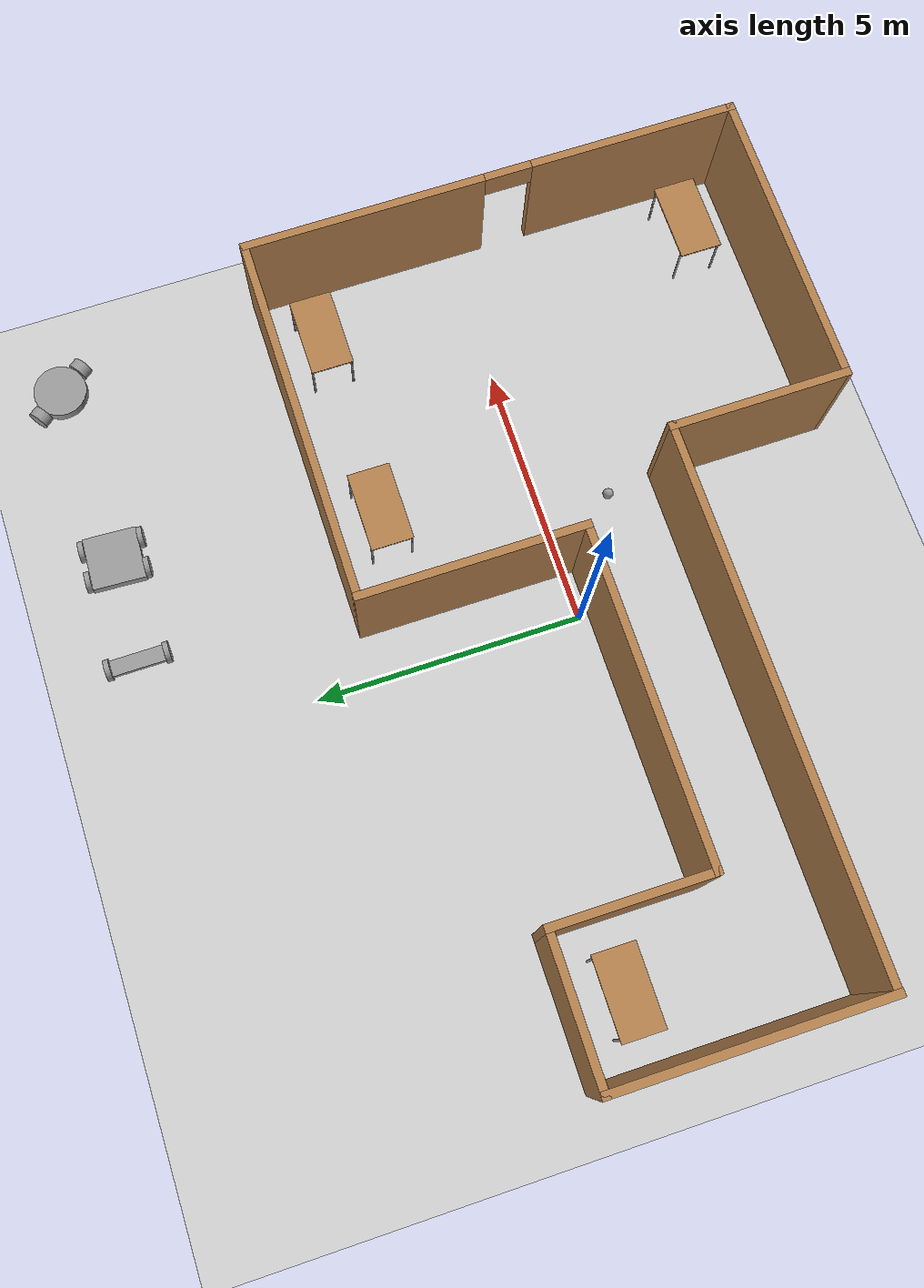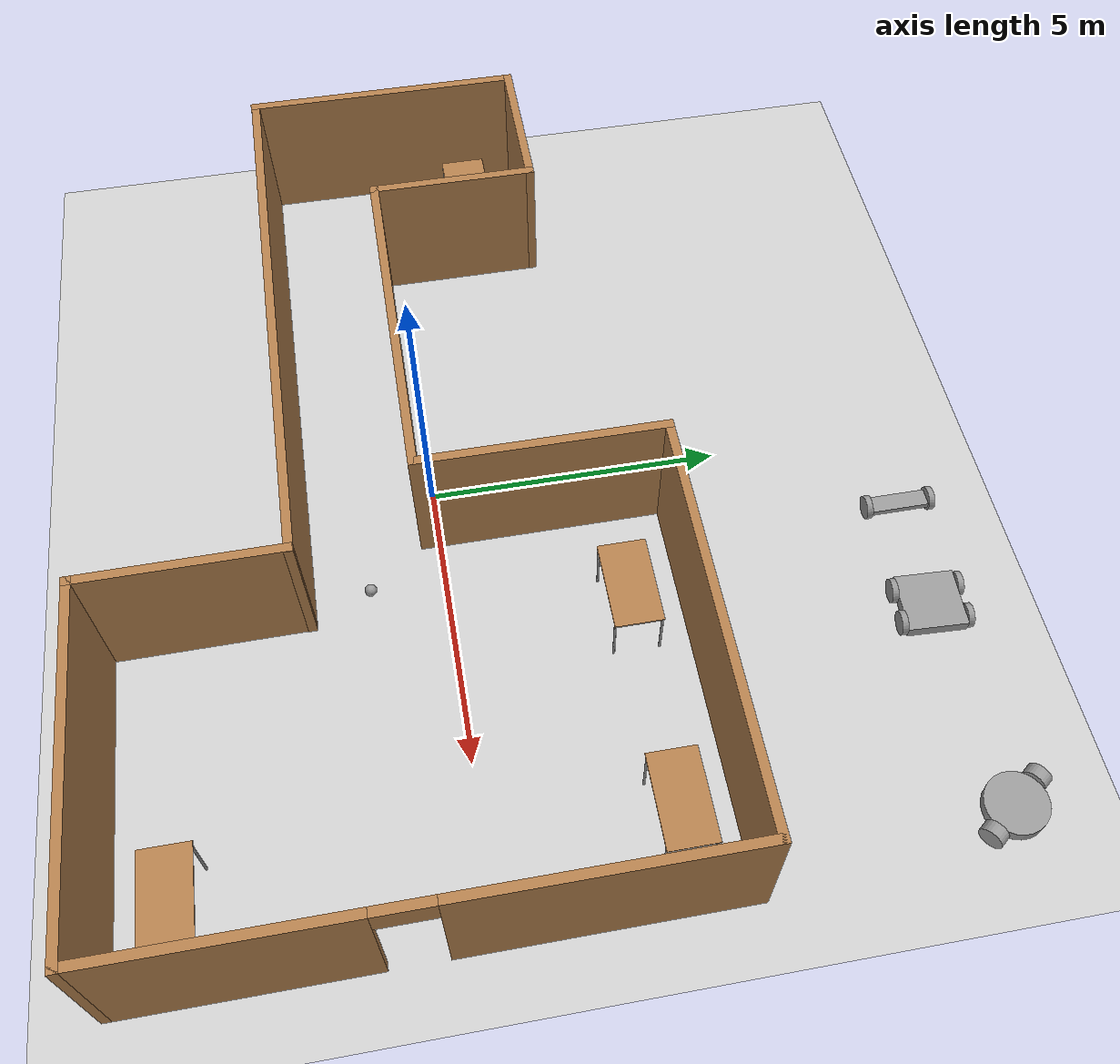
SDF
<sdf version="1.6">
 <world name="default">
  <light name="sun" type="directional">
   <pose>0 0 10 0 -0 0</pose>
   <diffuse>0.8 0.8 0.8 1</diffuse>
   <specular>0.2 0.2 0.2 1</specular>
   <attenuation>
    <range>1000</range>
    <constant>0.9</constant>
    <linear>0.01</linear>
    <quadratic>0.001</quadratic>
   </attenuation>
   <direction>-0.5 0.1 -0.9</direction>
   <spot><inner_angle>0</inner_angle><outer_angle>0</outer_angle><falloff>0</falloff></spot>
  </light>
  <model name="ground_plane">
   <static>1</static>
   <link name="link">
    <collision name="collision">
     <geometry><plane><normal>0 0 1</normal><size>100 100</size></plane></geometry>
     <surface>
      <contact><collide_bitmask>65535</collide_bitmask></contact>
      <friction><ode><mu>100</mu><mu2>50</mu2></ode></friction>
     </surface>
    </collision>
    <visual name="visual">
     <cast_shadows>0</cast_shadows>
     <geometry><plane><normal>0 0 1</normal><size>100 100</size></plane></geometry>
     <material>
      <script><uri>file://media/materials/scripts/gazebo.material</uri><name>Gazebo/Grey</name></script>
     </material>
    </visual>
   </link>
  </model>
  <gravity>0 0 -9.8</gravity>
  <magnetic_field>6e-06 2.3e-05 -4.2e-05</magnetic_field>
  <atmosphere type="adiabatic"/>
  <physics name="default_physics" default="0" type="ode">
   <max_step_size>0.001</max_step_size>
   <real_time_factor>1</real_time_factor>
   <real_time_update_rate>1000</real_time_update_rate>
  </physics>
  <scene><ambient>0.4 0.4 0.4 1</ambient><background>0.7 0.7 0.7 1</background><shadows>1</shadows></scene>
  <spherical_coordinates>
   <surface_model>EARTH_WGS84</surface_model>
   <latitude_deg>0</latitude_deg>
   <longitude_deg>0</longitude_deg>
   <elevation>0</elevation>
   <heading_deg>0</heading_deg>
  </spherical_coordinates>
  <model name="robot">
   <link name="link_1">
    <inertial>
     <mass>1</mass>
     <inertia>
      <ixx>0.166667</ixx>
      <ixy>0</ixy>
      <ixz>0</ixz>
      <iyy>0.166667</iyy>
      <iyz>0</iyz>
      <izz>0.166667</izz>
     </inertia>
    </inertial>
    <visual name="visual">
     <geometry><box><size>0.3 1 0.1</size></box></geometry>
     <material>
      <lighting>1</lighting>
      <script><uri>file://media/materials/scripts/gazebo.material</uri><name>Gazebo/Grey</name></script>
      <shader type="pixel"><normal_map>__default__</normal_map></shader>
      <ambient>0.3 0.3 0.3 1</ambient>
      <diffuse>0.7 0.7 0.7 1</diffuse>
      <specular>0.01 0.01 0.01 1</specular>
      <emissive>0 0 0 1</emissive>
     </material>
    </visual>
    <collision name="collision">
     <geometry><box><size>0.3 1 0.1</size></box></geometry>
     <surface>
      <friction>
       <ode><mu>1</mu><mu2>1</mu2><fdir1>0 0 0</fdir1><slip1>0</slip1><slip2>0</slip2></ode>
       <torsional>
        <coefficient>1</coefficient>
        <patch_radius>0</patch_radius>
        <surface_radius>0</surface_radius>
        <use_patch_radius>1</use_patch_radius>
        <ode><slip>0</slip></ode>
       </torsional>
      </friction>
      <bounce><restitution_coefficient>0</restitution_coefficient><threshold>1e+06</threshold></bounce>
      <contact>
       <collide_without_contact>0</collide_without_contact>
       <collide_without_contact_bitmask>1</collide_without_contact_bitmask>
       <collide_bitmask>1</collide_bitmask>
       <ode>
        <soft_cfm>0</soft_cfm>
        <soft_erp>0.2</soft_erp>
        <kp>1e+13</kp>
        <kd>1</kd>
        <max_vel>0.01</max_vel>
        <min_depth>0</min_depth>
       </ode>
       <bullet>
        <split_impulse>1</split_impulse>
        <split_impulse_penetration_threshold>-0.01</split_impulse_penetration_threshold>
        <soft_cfm>0</soft_cfm>
        <soft_erp>0.2</soft_erp>
        <kp>1e+13</kp>
        <kd>1</kd>
       </bullet>
      </contact>
     </surface>
    </collision>
   </link>
   <link name="link_2">
    <inertial>
     <mass>1</mass>
     <inertia><ixx>0.145833</ixx><ixy>0</ixy><ixz>0</ixz><iyy>0.145833</iyy><iyz>0</iyz><izz>0.125</izz></inertia>
    </inertial>
    <pose>0 -0.550019 0 1.5707 -0 0</pose>
    <visual name="visual">
     <geometry><cylinder><radius>0.2</radius><length>0.1</length></cylinder></geometry>
     <material>
      <lighting>1</lighting>
      <script><uri>file://media/materials/scripts/gazebo.material</uri><name>Gazebo/Grey</name></script>
      <shader type="pixel"><normal_map>__default__</normal_map></shader>
      <ambient>0.3 0.3 0.3 1</ambient>
      <diffuse>0.7 0.7 0.7 1</diffuse>
      <specular>0.01 0.01 0.01 1</specular>
      <emissive>0 0 0 1</emissive>
     </material>
    </visual>
    <collision name="collision">
     <geometry><cylinder><radius>0.2</radius><length>0.1</length></cylinder></geometry>
     <surface>
      <friction>
       <ode><mu>1</mu><mu2>1</mu2><fdir1>0 0 0</fdir1><slip1>0</slip1><slip2>0</slip2></ode>
       <torsional>
        <coefficient>1</coefficient>
        <patch_radius>0</patch_radius>
        <surface_radius>0</surface_radius>
        <use_patch_radius>1</use_patch_radius>
        <ode><slip>0</slip></ode>
       </torsional>
      </friction>
      <bounce><restitution_coefficient>0</restitution_coefficient><threshold>1e+06</threshold></bounce>
      <contact>
       <collide_without_contact>0</collide_without_contact>
       <collide_without_contact_bitmask>1</collide_without_contact_bitmask>
       <collide_bitmask>1</collide_bitmask>
       <ode>
        <soft_cfm>0</soft_cfm>
        <soft_erp>0.2</soft_erp>
        <kp>1e+13</kp>
        <kd>1</kd>
        <max_vel>0.01</max_vel>
        <min_depth>0</min_depth>
       </ode>
       <bullet>
        <split_impulse>1</split_impulse>
        <split_impulse_penetration_threshold>-0.01</split_impulse_penetration_threshold>
        <soft_cfm>0</soft_cfm>
        <soft_erp>0.2</soft_erp>
        <kp>1e+13</kp>
        <kd>1</kd>
       </bullet>
      </contact>
     </surface>
    </collision>
   </link>
   <link name="link_2_clone">
    <inertial>
     <mass>1</mass>
     <inertia><ixx>0.145833</ixx><ixy>0</ixy><ixz>0</ixz><iyy>0.145833</iyy><iyz>0</iyz><izz>0.125</izz></inertia>
    </inertial>
    <pose>0 0.550019 0 1.5707 -0 0</pose>
    <visual name="visual">
     <geometry><cylinder><radius>0.2</radius><length>0.1</length></cylinder></geometry>
     <material>
      <lighting>1</lighting>
      <script><uri>file://media/materials/scripts/gazebo.material</uri><name>Gazebo/Grey</name></script>
      <shader type="pixel"><normal_map>__default__</normal_map></shader>
      <ambient>0.3 0.3 0.3 1</ambient>
      <diffuse>0.7 0.7 0.7 1</diffuse>
      <specular>0.01 0.01 0.01 1</specular>
      <emissive>0 0 0 1</emissive>
     </material>
    </visual>
    <collision name="collision">
     <geometry><cylinder><radius>0.2</radius><length>0.1</length></cylinder></geometry>
     <surface>
      <friction>
       <ode><mu>1</mu><mu2>1</mu2><fdir1>0 0 0</fdir1><slip1>0</slip1><slip2>0</slip2></ode>
       <torsional>
        <coefficient>1</coefficient>
        <patch_radius>0</patch_radius>
        <surface_radius>0</surface_radius>
        <use_patch_radius>1</use_patch_radius>
        <ode><slip>0</slip></ode>
       </torsional>
      </friction>
      <bounce><restitution_coefficient>0</restitution_coefficient><threshold>1e+06</threshold></bounce>
      <contact>
       <collide_without_contact>0</collide_without_contact>
       <collide_without_contact_bitmask>1</collide_without_contact_bitmask>
       <collide_bitmask>1</collide_bitmask>
       <ode>
        <soft_cfm>0</soft_cfm>
        <soft_erp>0.2</soft_erp>
        <kp>1e+13</kp>
        <kd>1</kd>
        <max_vel>0.01</max_vel>
        <min_depth>0</min_depth>
       </ode>
       <bullet>
        <split_impulse>1</split_impulse>
        <split_impulse_penetration_threshold>-0.01</split_impulse_penetration_threshold>
        <soft_cfm>0</soft_cfm>
        <soft_erp>0.2</soft_erp>
        <kp>1e+13</kp>
        <kd>1</kd>
       </bullet>
      </contact>
     </surface>
    </collision>
   </link>
   <joint name="link_1_JOINT_0" type="revolute">
    <parent>link_1</parent>
    <child>link_2</child>
    <axis>
     <xyz>0 0 1</xyz>
     <limit>
      <lower>-1.79769e+308</lower>
      <upper>1.79769e+308</upper>
      <effort>-1</effort>
      <velocity>-1</velocity>
     </limit>
     <dynamics>
      <spring_reference>0</spring_reference>
      <spring_stiffness>0</spring_stiffness>
      <damping>0</damping>
     </dynamics>
     <use_parent_model_frame>0</use_parent_model_frame>
    </axis>
    <physics>
     <ode><limit><cfm>0</cfm><erp>0.2</erp></limit><suspension><cfm>0</cfm><erp>0.2</erp></suspension></ode>
    </physics>
   </joint>
   <joint name="link_1_JOINT_1" type="revolute">
    <parent>link_1</parent>
    <child>link_2_clone</child>
    <axis>
     <xyz>0 0 1</xyz>
     <limit>
      <lower>-1.79769e+308</lower>
      <upper>1.79769e+308</upper>
      <effort>-1</effort>
      <velocity>-1</velocity>
     </limit>
     <dynamics>
      <spring_reference>0</spring_reference>
      <spring_stiffness>0</spring_stiffness>
      <damping>0</damping>
     </dynamics>
     <use_parent_model_frame>0</use_parent_model_frame>
    </axis>
    <physics>
     <ode><limit><cfm>0</cfm><erp>0.2</erp></limit><suspension><cfm>0</cfm><erp>0.2</erp></suspension></ode>
    </physics>
   </joint>
   <static>0</static>
   <pose>1.65673 7.87249 0.200005 0 -0 0</pose>
  </model>
  <model name="building">
   <pose>0.01839 -0.458464 0 0 -0 0</pose>
   <link name="Wall_0">
    <collision name="Wall_0_Collision">
     <geometry><box><size>5 0.15 2.5</size></box></geometry>
     <pose>0 0 1.25 0 -0 0</pose>
    </collision>
    <visual name="Wall_0_Visual">
     <pose>0 0 1.25 0 -0 0</pose>
     <geometry><box><size>5 0.15 2.5</size></box></geometry>
     <material>
      <script><uri>file://media/materials/scripts/gazebo.material</uri><name>Gazebo/Wood</name></script>
      <ambient>1 1 1 1</ambient>
     </material>
     <meta><layer>0</layer></meta>
    </visual>
    <pose>-7.78488 0.627645 0 0 -0 1.5708</pose>
   </link>
   <link name="Wall_1">
    <collision name="Wall_1_Collision">
     <geometry><box><size>2.77048 0.15 2.5</size></box></geometry>
     <pose>0 0 1.25 0 -0 0</pose>
    </collision>
    <visual name="Wall_1_Visual">
     <pose>0 0 1.25 0 -0 0</pose>
     <geometry><box><size>2.77048 0.15 2.5</size></box></geometry>
     <material>
      <script><uri>file://media/materials/scripts/gazebo.material</uri><name>Gazebo/Wood</name></script>
      <ambient>1 1 1 1</ambient>
     </material>
     <meta><layer>0</layer></meta>
    </visual>
    <pose>-6.47488 3.06265 0 0 -0 0</pose>
   </link>
   <link name="Wall_2">
    <collision name="Wall_2_Collision">
     <geometry><box><size>3 0.15 2.5</size></box></geometry>
     <pose>0 0 1.25 0 -0 0</pose>
    </collision>
    <visual name="Wall_2_Visual">
     <pose>0 0 1.25 0 -0 0</pose>
     <geometry><box><size>3 0.15 2.5</size></box></geometry>
     <material>
      <script><uri>file://media/materials/scripts/gazebo.material</uri><name>Gazebo/Wood</name></script>
      <ambient>1 1 1 1</ambient>
     </material>
     <meta><layer>0</layer></meta>
    </visual>
    <pose>-5.16488 1.63765 0 0 -0 -1.5708</pose>
   </link>
   <link name="Wall_3">
    <collision name="Wall_3_Collision">
     <geometry><box><size>6.25 0.15 2.5</size></box></geometry>
     <pose>0 0 1.25 0 -0 0</pose>
    </collision>
    <visual name="Wall_3_Visual">
     <pose>0 0 1.25 0 -0 0</pose>
     <geometry><box><size>6.25 0.15 2.5</size></box></geometry>
     <material>
      <script><uri>file://media/materials/scripts/gazebo.material</uri><name>Gazebo/Wood</name></script>
      <ambient>1 1 1 1</ambient>
     </material>
     <meta><layer>0</layer></meta>
    </visual>
    <pose>-2.11488 0.212646 0 0 -0 0</pose>
   </link>
   <link name="Wall_4">
    <collision name="Wall_4_Collision">
     <geometry><box><size>4.25 0.15 2.5</size></box></geometry>
     <pose>0 0 1.25 0 -0 0</pose>
    </collision>
    <visual name="Wall_4_Visual">
     <pose>0 0 1.25 0 -0 0</pose>
     <geometry><box><size>4.25 0.15 2.5</size></box></geometry>
     <material>
      <script><uri>file://media/materials/scripts/gazebo.material</uri><name>Gazebo/Wood</name></script>
      <ambient>1 1 1 1</ambient>
     </material>
     <meta><layer>0</layer></meta>
    </visual>
    <pose>0.935119 2.26265 0 0 -0 1.5708</pose>
   </link>
   <link name="Wall_5">
    <collision name="Wall_5_Collision">
     <geometry><box><size>7 0.15 2.5</size></box></geometry>
     <pose>0 0 1.25 0 -0 0</pose>
    </collision>
    <visual name="Wall_5_Visual">
     <pose>0 0 1.25 0 -0 0</pose>
     <geometry><box><size>7 0.15 2.5</size></box></geometry>
     <material>
      <script><uri>file://media/materials/scripts/gazebo.material</uri><name>Gazebo/Wood</name></script>
      <ambient>1 1 1 1</ambient>
     </material>
     <meta><layer>0</layer></meta>
    </visual>
    <pose>4.36012 4.31265 0 0 -0 0</pose>
   </link>
   <link name="Wall_6">
    <pose>7.78512 -0.362354 0 0 -0 -1.5708</pose>
    <visual name="Wall_6_Visual_0">
     <pose>-2.4375 0 1.25 0 -0 0</pose>
     <geometry><box><size>4.625 0.15 2.5</size></box></geometry>
     <material>
      <script><uri>file://media/materials/scripts/gazebo.material</uri><name>Gazebo/Wood</name></script>
      <ambient>0.760784 0.662745 0.627451 1</ambient>
     </material>
     <meta><layer>0</layer></meta>
    </visual>
    <collision name="Wall_6_Collision_0">
     <geometry><box><size>4.625 0.15 2.5</size></box></geometry>
     <pose>-2.4375 0 1.25 0 -0 0</pose>
    </collision>
    <visual name="Wall_6_Visual_1">
     <pose>2.7625 0 1.25 0 -0 0</pose>
     <geometry><box><size>3.975 0.15 2.5</size></box></geometry>
     <material>
      <script><uri>file://media/materials/scripts/gazebo.material</uri><name>Gazebo/Wood</name></script>
      <ambient>0.760784 0.662745 0.627451 1</ambient>
     </material>
     <meta><layer>0</layer></meta>
    </visual>
    <collision name="Wall_6_Collision_1">
     <geometry><box><size>3.975 0.15 2.5</size></box></geometry>
     <pose>2.7625 0 1.25 0 -0 0</pose>
    </collision>
    <visual name="Wall_6_Visual_2">
     <pose>0.325 0 2.25 0 -0 0</pose>
     <geometry><box><size>0.9 0.15 0.5</size></box></geometry>
     <material>
      <script><uri>file://media/materials/scripts/gazebo.material</uri><name>Gazebo/Wood</name></script>
      <ambient>0.760784 0.662745 0.627451 1</ambient>
     </material>
     <meta><layer>0</layer></meta>
    </visual>
    <collision name="Wall_6_Collision_2">
     <geometry><box><size>0.9 0.15 0.5</size></box></geometry>
     <pose>0.325 0 2.25 0 -0 0</pose>
    </collision>
   </link>
   <link name="Wall_7">
    <collision name="Wall_7_Collision">
     <geometry><box><size>5.75 0.15 2.5</size></box></geometry>
     <pose>0 0 1.25 0 -0 0</pose>
    </collision>
    <visual name="Wall_7_Visual">
     <pose>0 0 1.25 0 -0 0</pose>
     <geometry><box><size>5.75 0.15 2.5</size></box></geometry>
     <material>
      <script><uri>file://media/materials/scripts/gazebo.material</uri><name>Gazebo/Wood</name></script>
      <ambient>1 1 1 1</ambient>
     </material>
     <meta><layer>0</layer></meta>
    </visual>
    <pose>4.98512 -5.03735 0 0 -0 3.14159</pose>
   </link>
   <link name="Wall_8">
    <collision name="Wall_8_Collision">
     <geometry><box><size>3.40014 0.15 2.5</size></box></geometry>
     <pose>0 0 1.25 0 -0 0</pose>
    </collision>
    <visual name="Wall_8_Visual">
     <pose>0 0 1.25 0 -0 0</pose>
     <geometry><box><size>3.40014 0.15 2.5</size></box></geometry>
     <material>
      <script><uri>file://media/materials/scripts/gazebo.material</uri><name>Gazebo/Wood</name></script>
      <ambient>1 1 1 1</ambient>
     </material>
     <meta><layer>0</layer></meta>
    </visual>
    <pose>2.18012 -3.41235 0 0 -0 1.57387</pose>
   </link>
   <link name="Wall_9">
    <collision name="Wall_9_Collision">
     <geometry><box><size>10 0.15 2.5</size></box></geometry>
     <pose>0 0 1.25 0 -0 0</pose>
    </collision>
    <visual name="Wall_9_Visual">
     <pose>0 0 1.25 0 -0 0</pose>
     <geometry><box><size>10 0.15 2.5</size></box></geometry>
     <material>
      <script><uri>file://media/materials/scripts/gazebo.material</uri><name>Gazebo/Wood</name></script>
      <ambient>1 1 1 1</ambient>
     </material>
     <meta><layer>0</layer></meta>
    </visual>
    <pose>-2.73988 -1.78735 0 0 -0 3.14159</pose>
   </link>
   <static>1</static>
  </model>
  <model name="table">
   <static>1</static>
   <link name="link">
    <collision name="surface">
     <pose>0 0 1 0 -0 0</pose>
     <geometry><box><size>1.5 0.8 0.03</size></box></geometry>
     <surface><friction><ode><mu>0.6</mu><mu2>0.6</mu2></ode></friction></surface>
    </collision>
    <visual name="visual1">
     <pose>0 0 1 0 -0 0</pose>
     <geometry><box><size>1.5 0.8 0.03</size></box></geometry>
     <material>
      <script><uri>file://media/materials/scripts/gazebo.material</uri><name>Gazebo/Wood</name></script>
     </material>
    </visual>
    <collision name="front_left_leg">
     <pose>0.68 0.38 0.5 0 -0 0</pose>
     <geometry><cylinder><radius>0.02</radius><length>1</length></cylinder></geometry>
    </collision>
    <visual name="front_left_leg">
     <pose>0.68 0.38 0.5 0 -0 0</pose>
     <geometry><cylinder><radius>0.02</radius><length>1</length></cylinder></geometry>
     <material>
      <script><uri>file://media/materials/scripts/gazebo.material</uri><name>Gazebo/Grey</name></script>
     </material>
    </visual>
    <collision name="front_right_leg">
     <pose>0.68 -0.38 0.5 0 -0 0</pose>
     <geometry><cylinder><radius>0.02</radius><length>1</length></cylinder></geometry>
    </collision>
    <visual name="front_right_leg">
     <pose>0.68 -0.38 0.5 0 -0 0</pose>
     <geometry><cylinder><radius>0.02</radius><length>1</length></cylinder></geometry>
     <material>
      <script><uri>file://media/materials/scripts/gazebo.material</uri><name>Gazebo/Grey</name></script>
     </material>
    </visual>
    <collision name="back_right_leg">
     <pose>-0.68 -0.38 0.5 0 -0 0</pose>
     <geometry><cylinder><radius>0.02</radius><length>1</length></cylinder></geometry>
    </collision>
    <visual name="back_right_leg">
     <pose>-0.68 -0.38 0.5 0 -0 0</pose>
     <geometry><cylinder><radius>0.02</radius><length>1</length></cylinder></geometry>
     <material>
      <script><uri>file://media/materials/scripts/gazebo.material</uri><name>Gazebo/Grey</name></script>
     </material>
    </visual>
    <collision name="back_left_leg">
     <pose>-0.68 0.38 0.5 0 -0 0</pose>
     <geometry><cylinder><radius>0.02</radius><length>1</length></cylinder></geometry>
    </collision>
    <visual name="back_left_leg">
     <pose>-0.68 0.38 0.5 0 -0 0</pose>
     <geometry><cylinder><radius>0.02</radius><length>1</length></cylinder></geometry>
     <material>
      <script><uri>file://media/materials/scripts/gazebo.material</uri><name>Gazebo/Grey</name></script>
     </material>
    </visual>
   </link>
   <pose>6.47443 2.90944 0 0 -0 0</pose>
  </model>
  <model name="table_0">
   <static>1</static>
   <link name="link">
    <collision name="surface">
     <pose>0 0 1 0 -0 0</pose>
     <geometry><box><size>1.5 0.8 0.03</size></box></geometry>
     <surface><friction><ode><mu>0.6</mu><mu2>0.6</mu2></ode></friction></surface>
    </collision>
    <visual name="visual1">
     <pose>0 0 1 0 -0 0</pose>
     <geometry><box><size>1.5 0.8 0.03</size></box></geometry>
     <material>
      <script><uri>file://media/materials/scripts/gazebo.material</uri><name>Gazebo/Wood</name></script>
     </material>
    </visual>
    <collision name="front_left_leg">
     <pose>0.68 0.38 0.5 0 -0 0</pose>
     <geometry><cylinder><radius>0.02</radius><length>1</length></cylinder></geometry>
    </collision>
    <visual name="front_left_leg">
     <pose>0.68 0.38 0.5 0 -0 0</pose>
     <geometry><cylinder><radius>0.02</radius><length>1</length></cylinder></geometry>
     <material>
      <script><uri>file://media/materials/scripts/gazebo.material</uri><name>Gazebo/Grey</name></script>
     </material>
    </visual>
    <collision name="front_right_leg">
     <pose>0.68 -0.38 0.5 0 -0 0</pose>
     <geometry><cylinder><radius>0.02</radius><length>1</length></cylinder></geometry>
    </collision>
    <visual name="front_right_leg">
     <pose>0.68 -0.38 0.5 0 -0 0</pose>
     <geometry><cylinder><radius>0.02</radius><length>1</length></cylinder></geometry>
     <material>
      <script><uri>file://media/materials/scripts/gazebo.material</uri><name>Gazebo/Grey</name></script>
     </material>
    </visual>
    <collision name="back_right_leg">
     <pose>-0.68 -0.38 0.5 0 -0 0</pose>
     <geometry><cylinder><radius>0.02</radius><length>1</length></cylinder></geometry>
    </collision>
    <visual name="back_right_leg">
     <pose>-0.68 -0.38 0.5 0 -0 0</pose>
     <geometry><cylinder><radius>0.02</radius><length>1</length></cylinder></geometry>
     <material>
      <script><uri>file://media/materials/scripts/gazebo.material</uri><name>Gazebo/Grey</name></script>
     </material>
    </visual>
    <collision name="back_left_leg">
     <pose>-0.68 0.38 0.5 0 -0 0</pose>
     <geometry><cylinder><radius>0.02</radius><length>1</length></cylinder></geometry>
    </collision>
    <visual name="back_left_leg">
     <pose>-0.68 0.38 0.5 0 -0 0</pose>
     <geometry><cylinder><radius>0.02</radius><length>1</length></cylinder></geometry>
     <material>
      <script><uri>file://media/materials/scripts/gazebo.material</uri><name>Gazebo/Grey</name></script>
     </material>
    </visual>
   </link>
   <pose>2.85109 2.89214 0 0 -0 0</pose>
  </model>
  <model name="table_1">
   <static>1</static>
   <link name="link">
    <collision name="surface">
     <pose>0 0 1 0 -0 0</pose>
     <geometry><box><size>1.5 0.8 0.03</size></box></geometry>
     <surface><friction><ode><mu>0.6</mu><mu2>0.6</mu2></ode></friction></surface>
    </collision>
    <visual name="visual1">
     <pose>0 0 1 0 -0 0</pose>
     <geometry><box><size>1.5 0.8 0.03</size></box></geometry>
     <material>
      <script><uri>file://media/materials/scripts/gazebo.material</uri><name>Gazebo/Wood</name></script>
     </material>
    </visual>
    <collision name="front_left_leg">
     <pose>0.68 0.38 0.5 0 -0 0</pose>
     <geometry><cylinder><radius>0.02</radius><length>1</length></cylinder></geometry>
    </collision>
    <visual name="front_left_leg">
     <pose>0.68 0.38 0.5 0 -0 0</pose>
     <geometry><cylinder><radius>0.02</radius><length>1</length></cylinder></geometry>
     <material>
      <script><uri>file://media/materials/scripts/gazebo.material</uri><name>Gazebo/Grey</name></script>
     </material>
    </visual>
    <collision name="front_right_leg">
     <pose>0.68 -0.38 0.5 0 -0 0</pose>
     <geometry><cylinder><radius>0.02</radius><length>1</length></cylinder></geometry>
    </collision>
    <visual name="front_right_leg">
     <pose>0.68 -0.38 0.5 0 -0 0</pose>
     <geometry><cylinder><radius>0.02</radius><length>1</length></cylinder></geometry>
     <material>
      <script><uri>file://media/materials/scripts/gazebo.material</uri><name>Gazebo/Grey</name></script>
     </material>
    </visual>
    <collision name="back_right_leg">
     <pose>-0.68 -0.38 0.5 0 -0 0</pose>
     <geometry><cylinder><radius>0.02</radius><length>1</length></cylinder></geometry>
    </collision>
    <visual name="back_right_leg">
     <pose>-0.68 -0.38 0.5 0 -0 0</pose>
     <geometry><cylinder><radius>0.02</radius><length>1</length></cylinder></geometry>
     <material>
      <script><uri>file://media/materials/scripts/gazebo.material</uri><name>Gazebo/Grey</name></script>
     </material>
    </visual>
    <collision name="back_left_leg">
     <pose>-0.68 0.38 0.5 0 -0 0</pose>
     <geometry><cylinder><radius>0.02</radius><length>1</length></cylinder></geometry>
    </collision>
    <visual name="back_left_leg">
     <pose>-0.68 0.38 0.5 0 -0 0</pose>
     <geometry><cylinder><radius>0.02</radius><length>1</length></cylinder></geometry>
     <material>
      <script><uri>file://media/materials/scripts/gazebo.material</uri><name>Gazebo/Grey</name></script>
     </material>
    </visual>
   </link>
   <pose>6.62971 -4.45803 0 0 -0 0</pose>
  </model>
  <model name="table_2">
   <static>1</static>
   <link name="link">
    <collision name="surface">
     <pose>0 0 1 0 -0 0</pose>
     <geometry><box><size>1.5 0.8 0.03</size></box></geometry>
     <surface><friction><ode><mu>0.6</mu><mu2>0.6</mu2></ode></friction></surface>
    </collision>
    <visual name="visual1">
     <pose>0 0 1 0 -0 0</pose>
     <geometry><box><size>1.5 0.8 0.03</size></box></geometry>
     <material>
      <script><uri>file://media/materials/scripts/gazebo.material</uri><name>Gazebo/Wood</name></script>
     </material>
    </visual>
    <collision name="front_left_leg">
     <pose>0.68 0.38 0.5 0 -0 0</pose>
     <geometry><cylinder><radius>0.02</radius><length>1</length></cylinder></geometry>
    </collision>
    <visual name="front_left_leg">
     <pose>0.68 0.38 0.5 0 -0 0</pose>
     <geometry><cylinder><radius>0.02</radius><length>1</length></cylinder></geometry>
     <material>
      <script><uri>file://media/materials/scripts/gazebo.material</uri><name>Gazebo/Grey</name></script>
     </material>
    </visual>
    <collision name="front_right_leg">
     <pose>0.68 -0.38 0.5 0 -0 0</pose>
     <geometry><cylinder><radius>0.02</radius><length>1</length></cylinder></geometry>
    </collision>
    <visual name="front_right_leg">
     <pose>0.68 -0.38 0.5 0 -0 0</pose>
     <geometry><cylinder><radius>0.02</radius><length>1</length></cylinder></geometry>
     <material>
      <script><uri>file://media/materials/scripts/gazebo.material</uri><name>Gazebo/Grey</name></script>
     </material>
    </visual>
    <collision name="back_right_leg">
     <pose>-0.68 -0.38 0.5 0 -0 0</pose>
     <geometry><cylinder><radius>0.02</radius><length>1</length></cylinder></geometry>
    </collision>
    <visual name="back_right_leg">
     <pose>-0.68 -0.38 0.5 0 -0 0</pose>
     <geometry><cylinder><radius>0.02</radius><length>1</length></cylinder></geometry>
     <material>
      <script><uri>file://media/materials/scripts/gazebo.material</uri><name>Gazebo/Grey</name></script>
     </material>
    </visual>
    <collision name="back_left_leg">
     <pose>-0.68 0.38 0.5 0 -0 0</pose>
     <geometry><cylinder><radius>0.02</radius><length>1</length></cylinder></geometry>
    </collision>
    <visual name="back_left_leg">
     <pose>-0.68 0.38 0.5 0 -0 0</pose>
     <geometry><cylinder><radius>0.02</radius><length>1</length></cylinder></geometry>
     <material>
      <script><uri>file://media/materials/scripts/gazebo.material</uri><name>Gazebo/Grey</name></script>
     </material>
    </visual>
   </link>
   <pose>-6.46608 1.54632 0 0 -0 0</pose>
  </model>
  <model name="robot4">
   <link name="link_0">
    <inertial>
     <mass>1</mass>
     <inertia>
      <ixx>0.166667</ixx>
      <ixy>0</ixy>
      <ixz>0</ixz>
      <iyy>0.166667</iyy>
      <iyz>0</iyz>
      <izz>0.166667</izz>
     </inertia>
    </inertial>
    <visual name="visual">
     <geometry><box><size>1 1 0.2</size></box></geometry>
     <material>
      <lighting>1</lighting>
      <script><uri>file://media/materials/scripts/gazebo.material</uri><name>Gazebo/Grey</name></script>
      <shader type="pixel"><normal_map>__default__</normal_map></shader>
      <ambient>0.3 0.3 0.3 1</ambient>
      <diffuse>0.7 0.7 0.7 1</diffuse>
      <specular>0.01 0.01 0.01 1</specular>
      <emissive>0 0 0 1</emissive>
     </material>
    </visual>
    <collision name="collision">
     <geometry><box><size>1 1 0.2</size></box></geometry>
     <surface>
      <friction>
       <ode><mu>1</mu><mu2>1</mu2><fdir1>0 0 0</fdir1><slip1>0</slip1><slip2>0</slip2></ode>
       <torsional>
        <coefficient>1</coefficient>
        <patch_radius>0</patch_radius>
        <surface_radius>0</surface_radius>
        <use_patch_radius>1</use_patch_radius>
        <ode><slip>0</slip></ode>
       </torsional>
      </friction>
      <bounce><restitution_coefficient>0</restitution_coefficient><threshold>1e+06</threshold></bounce>
      <contact>
       <collide_without_contact>0</collide_without_contact>
       <collide_without_contact_bitmask>1</collide_without_contact_bitmask>
       <collide_bitmask>1</collide_bitmask>
       <ode>
        <soft_cfm>0</soft_cfm>
        <soft_erp>0.2</soft_erp>
        <kp>1e+13</kp>
        <kd>1</kd>
        <max_vel>0.01</max_vel>
        <min_depth>0</min_depth>
       </ode>
       <bullet>
        <split_impulse>1</split_impulse>
        <split_impulse_penetration_threshold>-0.01</split_impulse_penetration_threshold>
        <soft_cfm>0</soft_cfm>
        <soft_erp>0.2</soft_erp>
        <kp>1e+13</kp>
        <kd>1</kd>
       </bullet>
      </contact>
     </surface>
    </collision>
   </link>
   <link name="link_1">
    <inertial>
     <mass>1</mass>
     <inertia><ixx>0.145833</ixx><ixy>0</ixy><ixz>0</ixz><iyy>0.145833</iyy><iyz>0</iyz><izz>0.125</izz></inertia>
    </inertial>
    <pose>0.3 -0.550019 0 1.5707 -0 0</pose>
    <visual name="visual">
     <geometry><cylinder><radius>0.2</radius><length>0.1</length></cylinder></geometry>
     <material>
      <lighting>1</lighting>
      <script><uri>file://media/materials/scripts/gazebo.material</uri><name>Gazebo/Grey</name></script>
      <shader type="pixel"><normal_map>__default__</normal_map></shader>
      <ambient>0.3 0.3 0.3 1</ambient>
      <diffuse>0.7 0.7 0.7 1</diffuse>
      <specular>0.01 0.01 0.01 1</specular>
      <emissive>0 0 0 1</emissive>
     </material>
    </visual>
    <collision name="collision">
     <geometry><cylinder><radius>0.2</radius><length>0.1</length></cylinder></geometry>
     <surface>
      <friction>
       <ode><mu>1</mu><mu2>1</mu2><fdir1>0 0 0</fdir1><slip1>0</slip1><slip2>0</slip2></ode>
       <torsional>
        <coefficient>1</coefficient>
        <patch_radius>0</patch_radius>
        <surface_radius>0</surface_radius>
        <use_patch_radius>1</use_patch_radius>
        <ode><slip>0</slip></ode>
       </torsional>
      </friction>
      <bounce><restitution_coefficient>0</restitution_coefficient><threshold>1e+06</threshold></bounce>
      <contact>
       <collide_without_contact>0</collide_without_contact>
       <collide_without_contact_bitmask>1</collide_without_contact_bitmask>
       <collide_bitmask>1</collide_bitmask>
       <ode>
        <soft_cfm>0</soft_cfm>
        <soft_erp>0.2</soft_erp>
        <kp>1e+13</kp>
        <kd>1</kd>
        <max_vel>0.01</max_vel>
        <min_depth>0</min_depth>
       </ode>
       <bullet>
        <split_impulse>1</split_impulse>
        <split_impulse_penetration_threshold>-0.01</split_impulse_penetration_threshold>
        <soft_cfm>0</soft_cfm>
        <soft_erp>0.2</soft_erp>
        <kp>1e+13</kp>
        <kd>1</kd>
       </bullet>
      </contact>
     </surface>
    </collision>
   </link>
   <link name="link_1_clone">
    <inertial>
     <mass>1</mass>
     <inertia><ixx>0.145833</ixx><ixy>0</ixy><ixz>0</ixz><iyy>0.145833</iyy><iyz>0</iyz><izz>0.125</izz></inertia>
    </inertial>
    <pose>0.3 0.550019 0 1.5707 -0 0</pose>
    <visual name="visual">
     <geometry><cylinder><radius>0.2</radius><length>0.1</length></cylinder></geometry>
     <material>
      <lighting>1</lighting>
      <script><uri>file://media/materials/scripts/gazebo.material</uri><name>Gazebo/Grey</name></script>
      <shader type="pixel"><normal_map>__default__</normal_map></shader>
      <ambient>0.3 0.3 0.3 1</ambient>
      <diffuse>0.7 0.7 0.7 1</diffuse>
      <specular>0.01 0.01 0.01 1</specular>
      <emissive>0 0 0 1</emissive>
     </material>
    </visual>
    <collision name="collision">
     <geometry><cylinder><radius>0.2</radius><length>0.1</length></cylinder></geometry>
     <surface>
      <friction>
       <ode><mu>1</mu><mu2>1</mu2><fdir1>0 0 0</fdir1><slip1>0</slip1><slip2>0</slip2></ode>
       <torsional>
        <coefficient>1</coefficient>
        <patch_radius>0</patch_radius>
        <surface_radius>0</surface_radius>
        <use_patch_radius>1</use_patch_radius>
        <ode><slip>0</slip></ode>
       </torsional>
      </friction>
      <bounce><restitution_coefficient>0</restitution_coefficient><threshold>1e+06</threshold></bounce>
      <contact>
       <collide_without_contact>0</collide_without_contact>
       <collide_without_contact_bitmask>1</collide_without_contact_bitmask>
       <collide_bitmask>1</collide_bitmask>
       <ode>
        <soft_cfm>0</soft_cfm>
        <soft_erp>0.2</soft_erp>
        <kp>1e+13</kp>
        <kd>1</kd>
        <max_vel>0.01</max_vel>
        <min_depth>0</min_depth>
       </ode>
       <bullet>
        <split_impulse>1</split_impulse>
        <split_impulse_penetration_threshold>-0.01</split_impulse_penetration_threshold>
        <soft_cfm>0</soft_cfm>
        <soft_erp>0.2</soft_erp>
        <kp>1e+13</kp>
        <kd>1</kd>
       </bullet>
      </contact>
     </surface>
    </collision>
   </link>
   <link name="link_1_clone_0">
    <inertial>
     <mass>1</mass>
     <inertia><ixx>0.145833</ixx><ixy>0</ixy><ixz>0</ixz><iyy>0.145833</iyy><iyz>0</iyz><izz>0.125</izz></inertia>
    </inertial>
    <pose>-0.3 0.550019 0 1.5707 -0 0</pose>
    <visual name="visual">
     <geometry><cylinder><radius>0.2</radius><length>0.1</length></cylinder></geometry>
     <material>
      <lighting>1</lighting>
      <script><uri>file://media/materials/scripts/gazebo.material</uri><name>Gazebo/Grey</name></script>
      <shader type="pixel"><normal_map>__default__</normal_map></shader>
      <ambient>0.3 0.3 0.3 1</ambient>
      <diffuse>0.7 0.7 0.7 1</diffuse>
      <specular>0.01 0.01 0.01 1</specular>
      <emissive>0 0 0 1</emissive>
     </material>
    </visual>
    <collision name="collision">
     <geometry><cylinder><radius>0.2</radius><length>0.1</length></cylinder></geometry>
     <surface>
      <friction>
       <ode><mu>1</mu><mu2>1</mu2><fdir1>0 0 0</fdir1><slip1>0</slip1><slip2>0</slip2></ode>
       <torsional>
        <coefficient>1</coefficient>
        <patch_radius>0</patch_radius>
        <surface_radius>0</surface_radius>
        <use_patch_radius>1</use_patch_radius>
        <ode><slip>0</slip></ode>
       </torsional>
      </friction>
      <bounce><restitution_coefficient>0</restitution_coefficient><threshold>1e+06</threshold></bounce>
      <contact>
       <collide_without_contact>0</collide_without_contact>
       <collide_without_contact_bitmask>1</collide_without_contact_bitmask>
       <collide_bitmask>1</collide_bitmask>
       <ode>
        <soft_cfm>0</soft_cfm>
        <soft_erp>0.2</soft_erp>
        <kp>1e+13</kp>
        <kd>1</kd>
        <max_vel>0.01</max_vel>
        <min_depth>0</min_depth>
       </ode>
       <bullet>
        <split_impulse>1</split_impulse>
        <split_impulse_penetration_threshold>-0.01</split_impulse_penetration_threshold>
        <soft_cfm>0</soft_cfm>
        <soft_erp>0.2</soft_erp>
        <kp>1e+13</kp>
        <kd>1</kd>
       </bullet>
      </contact>
     </surface>
    </collision>
   </link>
   <link name="link_1_clone_1">
    <inertial>
     <mass>1</mass>
     <inertia><ixx>0.145833</ixx><ixy>0</ixy><ixz>0</ixz><iyy>0.145833</iyy><iyz>0</iyz><izz>0.125</izz></inertia>
    </inertial>
    <pose>-0.3 -0.550019 0 1.5707 -0 0</pose>
    <visual name="visual">
     <geometry><cylinder><radius>0.2</radius><length>0.1</length></cylinder></geometry>
     <material>
      <lighting>1</lighting>
      <script><uri>file://media/materials/scripts/gazebo.material</uri><name>Gazebo/Grey</name></script>
      <shader type="pixel"><normal_map>__default__</normal_map></shader>
      <ambient>0.3 0.3 0.3 1</ambient>
      <diffuse>0.7 0.7 0.7 1</diffuse>
      <specular>0.01 0.01 0.01 1</specular>
      <emissive>0 0 0 1</emissive>
     </material>
    </visual>
    <collision name="collision">
     <geometry><cylinder><radius>0.2</radius><length>0.1</length></cylinder></geometry>
     <surface>
      <friction>
       <ode><mu>1</mu><mu2>1</mu2><fdir1>0 0 0</fdir1><slip1>0</slip1><slip2>0</slip2></ode>
       <torsional>
        <coefficient>1</coefficient>
        <patch_radius>0</patch_radius>
        <surface_radius>0</surface_radius>
        <use_patch_radius>1</use_patch_radius>
        <ode><slip>0</slip></ode>
       </torsional>
      </friction>
      <bounce><restitution_coefficient>0</restitution_coefficient><threshold>1e+06</threshold></bounce>
      <contact>
       <collide_without_contact>0</collide_without_contact>
       <collide_without_contact_bitmask>1</collide_without_contact_bitmask>
       <collide_bitmask>1</collide_bitmask>
       <ode>
        <soft_cfm>0</soft_cfm>
        <soft_erp>0.2</soft_erp>
        <kp>1e+13</kp>
        <kd>1</kd>
        <max_vel>0.01</max_vel>
        <min_depth>0</min_depth>
       </ode>
       <bullet>
        <split_impulse>1</split_impulse>
        <split_impulse_penetration_threshold>-0.01</split_impulse_penetration_threshold>
        <soft_cfm>0</soft_cfm>
        <soft_erp>0.2</soft_erp>
        <kp>1e+13</kp>
        <kd>1</kd>
       </bullet>
      </contact>
     </surface>
    </collision>
   </link>
   <joint name="link_0_JOINT_1" type="revolute">
    <parent>link_0</parent>
    <child>link_1</child>
    <pose>0 0 0 -0.01 -0 -0.01</pose>
    <axis>
     <xyz>0 0 1</xyz>
     <limit>
      <lower>-1.79769e+308</lower>
      <upper>1.79769e+308</upper>
      <effort>-1</effort>
      <velocity>-1</velocity>
     </limit>
     <dynamics>
      <spring_reference>0</spring_reference>
      <spring_stiffness>0</spring_stiffness>
      <damping>0</damping>
     </dynamics>
     <use_parent_model_frame>0</use_parent_model_frame>
    </axis>
    <physics>
     <ode><limit><cfm>0</cfm><erp>0.2</erp></limit><suspension><cfm>0</cfm><erp>0.2</erp></suspension></ode>
    </physics>
   </joint>
   <joint name="link_0_JOINT_4" type="revolute">
    <parent>link_0</parent>
    <child>link_1_clone_0</child>
    <axis>
     <xyz>0 0 1</xyz>
     <limit>
      <lower>-1.79769e+308</lower>
      <upper>1.79769e+308</upper>
      <effort>-1</effort>
      <velocity>-1</velocity>
     </limit>
     <dynamics>
      <spring_reference>0</spring_reference>
      <spring_stiffness>0</spring_stiffness>
      <damping>0</damping>
     </dynamics>
     <use_parent_model_frame>0</use_parent_model_frame>
    </axis>
    <physics>
     <ode><limit><cfm>0</cfm><erp>0.2</erp></limit><suspension><cfm>0</cfm><erp>0.2</erp></suspension></ode>
    </physics>
   </joint>
   <joint name="link_0_JOINT_5" type="revolute">
    <parent>link_0</parent>
    <child>link_1_clone_1</child>
    <axis>
     <xyz>0 0 1</xyz>
     <limit>
      <lower>-1.79769e+308</lower>
      <upper>1.79769e+308</upper>
      <effort>-1</effort>
      <velocity>-1</velocity>
     </limit>
     <dynamics>
      <spring_reference>0</spring_reference>
      <spring_stiffness>0</spring_stiffness>
      <damping>0</damping>
     </dynamics>
     <use_parent_model_frame>0</use_parent_model_frame>
    </axis>
    <physics>
     <ode><limit><cfm>0</cfm><erp>0.2</erp></limit><suspension><cfm>0</cfm><erp>0.2</erp></suspension></ode>
    </physics>
   </joint>
   <joint name="link_0_JOINT_6" type="revolute">
    <parent>link_0</parent>
    <child>link_1_clone</child>
    <axis>
     <xyz>0 0 1</xyz>
     <limit>
      <lower>-1.79769e+308</lower>
      <upper>1.79769e+308</upper>
      <effort>-1</effort>
      <velocity>-1</velocity>
     </limit>
     <dynamics>
      <spring_reference>0</spring_reference>
      <spring_stiffness>0</spring_stiffness>
      <damping>0</damping>
     </dynamics>
     <use_parent_model_frame>0</use_parent_model_frame>
    </axis>
    <physics>
     <ode><limit><cfm>0</cfm><erp>0.2</erp></limit><suspension><cfm>0</cfm><erp>0.2</erp></suspension></ode>
    </physics>
   </joint>
   <static>0</static>
   <pose>3.64288 7.77886 0.200005 0 0 -0.047806</pose>
  </model>
  <model name="robotc">
   <link name="link_0">
    <inertial>
     <mass>1</mass>
     <inertia><ixx>0.145833</ixx><ixy>0</ixy><ixz>0</ixz><iyy>0.145833</iyy><iyz>0</iyz><izz>0.125</izz></inertia>
    </inertial>
    <pose>0 1e-06 0 0 -0 0</pose>
    <visual name="visual">
     <geometry><cylinder><radius>0.5</radius><length>0.2</length></cylinder></geometry>
     <material>
      <lighting>1</lighting>
      <script><uri>file://media/materials/scripts/gazebo.material</uri><name>Gazebo/Grey</name></script>
      <shader type="pixel"><normal_map>__default__</normal_map></shader>
      <ambient>0.3 0.3 0.3 1</ambient>
      <diffuse>0.7 0.7 0.7 1</diffuse>
      <specular>0.01 0.01 0.01 1</specular>
      <emissive>0 0 0 1</emissive>
     </material>
    </visual>
    <collision name="collision">
     <geometry><cylinder><radius>0.5</radius><length>0.2</length></cylinder></geometry>
     <surface>
      <friction>
       <ode><mu>1</mu><mu2>1</mu2><fdir1>0 0 0</fdir1><slip1>0</slip1><slip2>0</slip2></ode>
       <torsional>
        <coefficient>1</coefficient>
        <patch_radius>0</patch_radius>
        <surface_radius>0</surface_radius>
        <use_patch_radius>1</use_patch_radius>
        <ode><slip>0</slip></ode>
       </torsional>
      </friction>
      <bounce><restitution_coefficient>0</restitution_coefficient><threshold>1e+06</threshold></bounce>
      <contact>
       <collide_without_contact>0</collide_without_contact>
       <collide_without_contact_bitmask>1</collide_without_contact_bitmask>
       <collide_bitmask>1</collide_bitmask>
       <ode>
        <soft_cfm>0</soft_cfm>
        <soft_erp>0.2</soft_erp>
        <kp>1e+13</kp>
        <kd>1</kd>
        <max_vel>0.01</max_vel>
        <min_depth>0</min_depth>
       </ode>
       <bullet>
        <split_impulse>1</split_impulse>
        <split_impulse_penetration_threshold>-0.01</split_impulse_penetration_threshold>
        <soft_cfm>0</soft_cfm>
        <soft_erp>0.2</soft_erp>
        <kp>1e+13</kp>
        <kd>1</kd>
       </bullet>
      </contact>
     </surface>
    </collision>
   </link>
   <link name="link_1">
    <inertial>
     <mass>1</mass>
     <inertia><ixx>0.145833</ixx><ixy>0</ixy><ixz>0</ixz><iyy>0.145833</iyy><iyz>0</iyz><izz>0.125</izz></inertia>
    </inertial>
    <pose>0 -0.600019 0 1.5707 -0 0</pose>
    <visual name="visual">
     <geometry><cylinder><radius>0.2</radius><length>0.2</length></cylinder></geometry>
     <material>
      <lighting>1</lighting>
      <script><uri>file://media/materials/scripts/gazebo.material</uri><name>Gazebo/Grey</name></script>
      <shader type="pixel"><normal_map>__default__</normal_map></shader>
      <ambient>0.3 0.3 0.3 1</ambient>
      <diffuse>0.7 0.7 0.7 1</diffuse>
      <specular>0.01 0.01 0.01 1</specular>
      <emissive>0 0 0 1</emissive>
     </material>
    </visual>
    <collision name="collision">
     <geometry><cylinder><radius>0.2</radius><length>0.2</length></cylinder></geometry>
     <surface>
      <friction>
       <ode><mu>1</mu><mu2>1</mu2><fdir1>0 0 0</fdir1><slip1>0</slip1><slip2>0</slip2></ode>
       <torsional>
        <coefficient>1</coefficient>
        <patch_radius>0</patch_radius>
        <surface_radius>0</surface_radius>
        <use_patch_radius>1</use_patch_radius>
        <ode><slip>0</slip></ode>
       </torsional>
      </friction>
      <bounce><restitution_coefficient>0</restitution_coefficient><threshold>1e+06</threshold></bounce>
      <contact>
       <collide_without_contact>0</collide_without_contact>
       <collide_without_contact_bitmask>1</collide_without_contact_bitmask>
       <collide_bitmask>1</collide_bitmask>
       <ode>
        <soft_cfm>0</soft_cfm>
        <soft_erp>0.2</soft_erp>
        <kp>1e+13</kp>
        <kd>1</kd>
        <max_vel>0.01</max_vel>
        <min_depth>0</min_depth>
       </ode>
       <bullet>
        <split_impulse>1</split_impulse>
        <split_impulse_penetration_threshold>-0.01</split_impulse_penetration_threshold>
        <soft_cfm>0</soft_cfm>
        <soft_erp>0.2</soft_erp>
        <kp>1e+13</kp>
        <kd>1</kd>
       </bullet>
      </contact>
     </surface>
    </collision>
   </link>
   <link name="link_1_clone">
    <inertial>
     <mass>1</mass>
     <inertia><ixx>0.145833</ixx><ixy>0</ixy><ixz>0</ixz><iyy>0.145833</iyy><iyz>0</iyz><izz>0.125</izz></inertia>
    </inertial>
    <pose>0 0.60002 0 1.5707 -0 0</pose>
    <visual name="visual">
     <geometry><cylinder><radius>0.2</radius><length>0.2</length></cylinder></geometry>
     <material>
      <lighting>1</lighting>
      <script><uri>file://media/materials/scripts/gazebo.material</uri><name>Gazebo/Grey</name></script>
      <shader type="pixel"><normal_map>__default__</normal_map></shader>
      <ambient>0.3 0.3 0.3 1</ambient>
      <diffuse>0.7 0.7 0.7 1</diffuse>
      <specular>0.01 0.01 0.01 1</specular>
      <emissive>0 0 0 1</emissive>
     </material>
    </visual>
    <collision name="collision">
     <geometry><cylinder><radius>0.2</radius><length>0.2</length></cylinder></geometry>
     <surface>
      <friction>
       <ode><mu>1</mu><mu2>1</mu2><fdir1>0 0 0</fdir1><slip1>0</slip1><slip2>0</slip2></ode>
       <torsional>
        <coefficient>1</coefficient>
        <patch_radius>0</patch_radius>
        <surface_radius>0</surface_radius>
        <use_patch_radius>1</use_patch_radius>
        <ode><slip>0</slip></ode>
       </torsional>
      </friction>
      <bounce><restitution_coefficient>0</restitution_coefficient><threshold>1e+06</threshold></bounce>
      <contact>
       <collide_without_contact>0</collide_without_contact>
       <collide_without_contact_bitmask>1</collide_without_contact_bitmask>
       <collide_bitmask>1</collide_bitmask>
       <ode>
        <soft_cfm>0</soft_cfm>
        <soft_erp>0.2</soft_erp>
        <kp>1e+13</kp>
        <kd>1</kd>
        <max_vel>0.01</max_vel>
        <min_depth>0</min_depth>
       </ode>
       <bullet>
        <split_impulse>1</split_impulse>
        <split_impulse_penetration_threshold>-0.01</split_impulse_penetration_threshold>
        <soft_cfm>0</soft_cfm>
        <soft_erp>0.2</soft_erp>
        <kp>1e+13</kp>
        <kd>1</kd>
       </bullet>
      </contact>
     </surface>
    </collision>
   </link>
   <joint name="link_0_JOINT_0" type="revolute">
    <parent>link_0</parent>
    <child>link_1</child>
    <axis>
     <xyz>0 0 1</xyz>
     <limit>
      <lower>-1.79769e+308</lower>
      <upper>1.79769e+308</upper>
      <effort>-1</effort>
      <velocity>-1</velocity>
     </limit>
     <dynamics>
      <spring_reference>0</spring_reference>
      <spring_stiffness>0</spring_stiffness>
      <damping>0</damping>
     </dynamics>
     <use_parent_model_frame>0</use_parent_model_frame>
    </axis>
    <physics>
     <ode><limit><cfm>0</cfm><erp>0.2</erp></limit><suspension><cfm>0</cfm><erp>0.2</erp></suspension></ode>
    </physics>
   </joint>
   <joint name="link_0_JOINT_1" type="revolute">
    <parent>link_0</parent>
    <child>link_1_clone</child>
    <axis>
     <xyz>0 0 1</xyz>
     <limit>
      <lower>-1.79769e+308</lower>
      <upper>1.79769e+308</upper>
      <effort>-1</effort>
      <velocity>-1</velocity>
     </limit>
     <dynamics>
      <spring_reference>0</spring_reference>
      <spring_stiffness>0</spring_stiffness>
      <damping>0</damping>
     </dynamics>
     <use_parent_model_frame>0</use_parent_model_frame>
    </axis>
    <physics>
     <ode><limit><cfm>0</cfm><erp>0.2</erp></limit><suspension><cfm>0</cfm><erp>0.2</erp></suspension></ode>
    </physics>
   </joint>
   <static>0</static>
   <pose>7.17765 7.91518 0.200007 4e-06 -0.017625 0.65596</pose>
  </model>
  <model name="my_ball_0">
   <link name="link_0">
    <inertial>
     <mass>1</mass>
     <inertia><ixx>0.1</ixx><ixy>0</ixy><ixz>0</ixz><iyy>0.1</iyy><iyz>0</iyz><izz>0.1</izz></inertia>
    </inertial>
    <visual name="visual">
     <geometry><sphere><radius>0.1</radius></sphere></geometry>
     <material>
      <lighting>1</lighting>
      <script><uri>file://media/materials/scripts/gazebo.material</uri><name>Gazebo/Grey</name></script>
      <shader type="pixel"><normal_map>__default__</normal_map></shader>
      <ambient>1 1 1 1</ambient>
      <diffuse>1 1 1 1</diffuse>
      <specular>1 1 1 1</specular>
      <emissive>1 1 1 1</emissive>
     </material>
    </visual>
    <collision name="collision">
     <geometry><sphere><radius>0.1</radius></sphere></geometry>
     <surface>
      <friction>
       <ode><mu>1</mu><mu2>1</mu2><fdir1>0 0 0</fdir1><slip1>0</slip1><slip2>0</slip2></ode>
       <torsional>
        <coefficient>1</coefficient>
        <patch_radius>0</patch_radius>
        <surface_radius>0</surface_radius>
        <use_patch_radius>1</use_patch_radius>
        <ode><slip>0</slip></ode>
       </torsional>
      </friction>
      <bounce><restitution_coefficient>0</restitution_coefficient><threshold>1e+06</threshold></bounce>
      <contact>
       <collide_without_contact>0</collide_without_contact>
       <collide_without_contact_bitmask>1</collide_without_contact_bitmask>
       <collide_bitmask>1</collide_bitmask>
       <ode>
        <soft_cfm>0</soft_cfm>
        <soft_erp>0.2</soft_erp>
        <kp>1e+13</kp>
        <kd>1</kd>
        <max_vel>0.01</max_vel>
        <min_depth>0</min_depth>
       </ode>
       <bullet>
        <split_impulse>1</split_impulse>
        <split_impulse_penetration_threshold>-0.01</split_impulse_penetration_threshold>
        <soft_cfm>0</soft_cfm>
        <soft_erp>0.2</soft_erp>
        <kp>1e+13</kp>
        <kd>1</kd>
       </bullet>
      </contact>
     </surface>
    </collision>
   </link>
   <static>0</static>
   <pose>1.96993 -1.21661 0.5 0 -0 0</pose>
  </model>
 </world>
</sdf>
